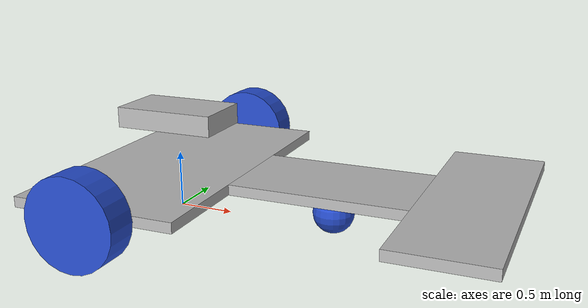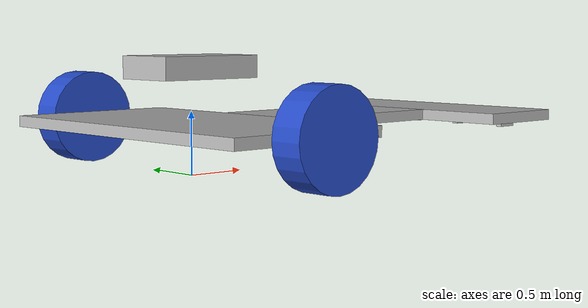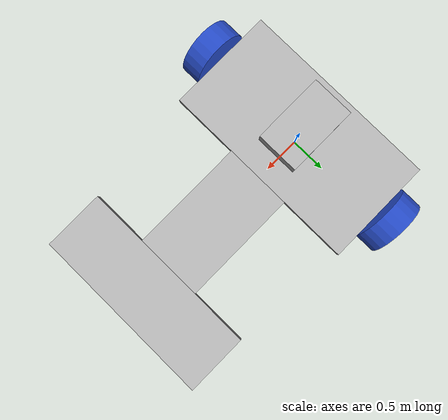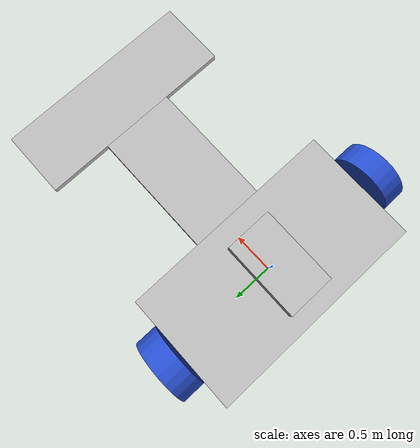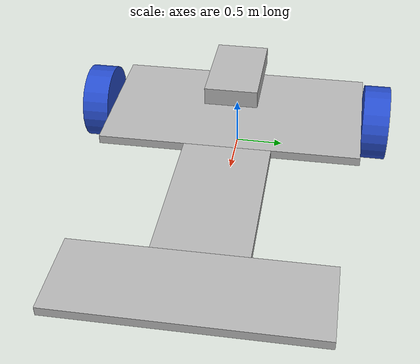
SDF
<sdf version='1.7'>
  <model name='FLF'>
    <link name='base_footprint'>
      <inertial>
        <pose>1.47813 0 0.379649 0 -0 0</pose>
        <mass>6.55</mass>
        <inertia>
          <ixx>0.272886</ixx>
          <ixy>-1.63324e-17</ixy>
          <ixz>0.0424508</ixz>
          <iyy>7.86908</iyy>
          <iyz>7.65344e-19</iyz>
          <izz>8.10009</izz>
        </inertia>
      </inertial>
      <collision name='base_footprint_fixed_joint_lump__base_link_collision'>
        <pose>0 0 0.387 0 -0 0</pose>
        <geometry>
          <box>
            <size>1.44 2.7 0.09</size>
          </box>
        </geometry>
      </collision>
      <collision name='base_footprint_fixed_joint_lump__ir_link_collision_1'>
        <pose>2.655 0 0.387 0 -0 0</pose>
        <geometry>
          <box>
            <size>0.81 2.43 0.09</size>
          </box>
        </geometry>
      </collision>
      <collision name='base_footprint_fixed_joint_lump__ir_sensor_1_collision_2'>
        <pose>2.65507 0 0.225 0 1.5708 0</pose>
        <geometry>
          <box>
            <size>0.18 0.054 0.054</size>
          </box>
        </geometry>
        <surface>
          <contact>
            <ode/>
          </contact>
          <friction>
            <ode/>
          </friction>
        </surface>
      </collision>
      <collision name='base_footprint_fixed_joint_lump__ir_sensor_2_collision_3'>
        <pose>2.655 0.486 0.315 0 1.5708 0</pose>
        <geometry>
          <box>
            <size>0.18 0.054 0.054</size>
          </box>
        </geometry>
        <surface>
          <contact>
            <ode/>
          </contact>
          <friction>
            <ode/>
          </friction>
        </surface>
      </collision>
      <collision name='base_footprint_fixed_joint_lump__ir_sensor_3_collision_4'>
        <pose>2.655 0.972 0.315 0 1.5708 0</pose>
        <geometry>
          <box>
            <size>0.18 0.054 0.054</size>
          </box>
        </geometry>
        <surface>
          <contact>
            <ode/>
          </contact>
          <friction>
            <ode/>
          </friction>
        </surface>
      </collision>
      <collision name='base_footprint_fixed_joint_lump__ir_sensor_4_collision_5'>
        <pose>2.655 -0.486 0.315 0 1.5708 0</pose>
        <geometry>
          <box>
            <size>0.18 0.054 0.054</size>
          </box>
        </geometry>
        <surface>
          <contact>
            <ode/>
          </contact>
          <friction>
            <ode/>
          </friction>
        </surface>
      </collision>
      <collision name='base_footprint_fixed_joint_lump__ir_sensor_5_collision_6'>
        <pose>2.655 -0.972 0.315 0 1.5708 0</pose>
        <geometry>
          <box>
            <size>0.18 0.054 0.054</size>
          </box>
        </geometry>
        <surface>
          <contact>
            <ode/>
          </contact>
          <friction>
            <ode/>
          </friction>
        </surface>
      </collision>
      <collision name='base_footprint_fixed_joint_lump__neck_link_collision_7'>
        <pose>1.485 0 0.387 0 -0 0</pose>
        <geometry>
          <box>
            <size>1.53 0.9 0.09</size>
          </box>
        </geometry>
      </collision>
      <collision name='base_footprint_fixed_joint_lump__caster_wheel_collision_8'>
        <pose>1.485 0 0.144 0 -0 0</pose>
        <geometry>
          <sphere>
            <radius>0.18</radius>
          </sphere>
        </geometry>
        <surface>
          <contact>
            <ode/>
          </contact>
          <friction>
            <ode>
              <mu>5e-06</mu>
              <mu2>5e-06</mu2>
            </ode>
          </friction>
        </surface>
      </collision>
      <visual name='base_footprint_fixed_joint_lump__base_link_visual'>
        <pose>0 0 0.387 0 -0 0</pose>
        <geometry>
          <box>
            <size>1.44 2.7 0.09</size>
          </box>
        </geometry>
      </visual>
      <visual name='base_footprint_fixed_joint_lump__ir_link_visual_1'>
        <pose>2.655 0 0.387 0 -0 0</pose>
        <geometry>
          <box>
            <size>0.81 2.43 0.09</size>
          </box>
        </geometry>
      </visual>
      <visual name='base_footprint_fixed_joint_lump__ir_sensor_1_visual_2'>
        <pose>2.745 0 0.315072 0 1.5708 0</pose>
        <geometry>
          <box>
            <size>0.054 0.054 0.18</size>
          </box>
        </geometry>
      </visual>
      <visual name='base_footprint_fixed_joint_lump__ir_sensor_2_visual_3'>
        <pose>2.745 0.486 0.315072 0 1.5708 0</pose>
        <geometry>
          <box>
            <size>0.054 0.054 0.18</size>
          </box>
        </geometry>
      </visual>
      <visual name='base_footprint_fixed_joint_lump__ir_sensor_3_visual_4'>
        <pose>2.745 0.972 0.315072 0 1.5708 0</pose>
        <geometry>
          <box>
            <size>0.054 0.054 0.18</size>
          </box>
        </geometry>
      </visual>
      <visual name='base_footprint_fixed_joint_lump__ir_sensor_4_visual_5'>
        <pose>2.745 -0.486 0.315072 0 1.5708 0</pose>
        <geometry>
          <box>
            <size>0.054 0.054 0.18</size>
          </box>
        </geometry>
      </visual>
      <visual name='base_footprint_fixed_joint_lump__ir_sensor_5_visual_6'>
        <pose>2.745 -0.972 0.315072 0 1.5708 0</pose>
        <geometry>
          <box>
            <size>0.054 0.054 0.18</size>
          </box>
        </geometry>
      </visual>
      <visual name='base_footprint_fixed_joint_lump__neck_link_visual_7'>
        <pose>1.485 0 0.387 0 -0 0</pose>
        <geometry>
          <box>
            <size>1.53 0.9 0.09</size>
          </box>
        </geometry>
      </visual>
      <visual name='base_footprint_fixed_joint_lump__caster_wheel_visual_8'>
        <pose>1.485 0 0.144 0 -0 0</pose>
        <geometry>
          <sphere>
            <radius>0.18</radius>
          </sphere>
        </geometry>
        <material>
          <script>
            <name>Gazebo/Blue</name>
            <uri>file://media/materials/scripts/gazebo.material</uri>
          </script>
        </material>
      </visual>
      <visual name='base_footprint_fixed_joint_lump__test_link_visual_9'>
        <pose>0 0 0.8496 0 1.5708 0</pose>
        <geometry>
          <box>
            <size>0.18 0.54 0.9</size>
          </box>
        </geometry>
      </visual>
      <sensor name='ir_sensor_1' type='ray'>
        <update_rate>30</update_rate>
        <visualize>1</visualize>
        <ray>
          <scan>
            <horizontal>
              <samples>10</samples>
              <resolution>1</resolution>
              <min_angle>-0.1</min_angle>
              <max_angle>0.1</max_angle>
            </horizontal>
          </scan>
          <range>
            <min>0.3</min>
            <max>2</max>
            <resolution>0.01</resolution>
          </range>
        </ray>
        <plugin name='ir_sensor_1_plugin' filename='libgazebo_ros_ray_sensor.so'>
          <ros>
            <namespace>/</namespace>
            <remapping>~/out:=/ir_sensor_1</remapping>
          </ros>
          <output_type>sensor_msgs/LaserScan</output_type>
          <frame_name>ir_sensor_1</frame_name>
        </plugin>
        <pose>2.655 0 0.315 3.14159 1.57079 3.14159</pose>
      </sensor>
      <sensor name='ir_sensor_2' type='ray'>
        <update_rate>30</update_rate>
        <visualize>1</visualize>
        <ray>
          <scan>
            <horizontal>
              <samples>10</samples>
              <resolution>1</resolution>
              <min_angle>-0.1</min_angle>
              <max_angle>0.1</max_angle>
            </horizontal>
          </scan>
          <range>
            <min>0.3</min>
            <max>2</max>
            <resolution>0.01</resolution>
          </range>
        </ray>
        <plugin name='ir_sensor_2_plugin' filename='libgazebo_ros_ray_sensor.so'>
          <ros>
            <namespace>/</namespace>
            <remapping>~/out:=/ir_sensor_2</remapping>
          </ros>
          <output_type>sensor_msgs/LaserScan</output_type>
          <frame_name>ir_sensor_2</frame_name>
        </plugin>
        <pose>2.655 0.486 0.315 3.14159 1.57079 3.14159</pose>
      </sensor>
      <sensor name='ir_sensor_3' type='ray'>
        <update_rate>30</update_rate>
        <visualize>1</visualize>
        <ray>
          <scan>
            <horizontal>
              <samples>10</samples>
              <resolution>1</resolution>
              <min_angle>-0.1</min_angle>
              <max_angle>0.1</max_angle>
            </horizontal>
          </scan>
          <range>
            <min>0.3</min>
            <max>2</max>
            <resolution>0.01</resolution>
          </range>
        </ray>
        <plugin name='ir_sensor_3_plugin' filename='libgazebo_ros_ray_sensor.so'>
          <ros>
            <namespace>/</namespace>
            <remapping>~/out:=/ir_sensor_3</remapping>
          </ros>
          <output_type>sensor_msgs/LaserScan</output_type>
          <frame_name>ir_sensor_3</frame_name>
        </plugin>
        <pose>2.655 0.972 0.315 3.14159 1.57079 3.14159</pose>
      </sensor>
      <sensor name='ir_sensor_4' type='ray'>
        <update_rate>30</update_rate>
        <visualize>1</visualize>
        <ray>
          <scan>
            <horizontal>
              <samples>10</samples>
              <resolution>1</resolution>
              <min_angle>-0.1</min_angle>
              <max_angle>0.1</max_angle>
            </horizontal>
          </scan>
          <range>
            <min>0.3</min>
            <max>2</max>
            <resolution>0.01</resolution>
          </range>
        </ray>
        <plugin name='ir_sensor_4_plugin' filename='libgazebo_ros_ray_sensor.so'>
          <ros>
            <namespace>/</namespace>
            <remapping>~/out:=/ir_sensor_4</remapping>
          </ros>
          <output_type>sensor_msgs/LaserScan</output_type>
          <frame_name>ir_sensor_4</frame_name>
        </plugin>
        <pose>2.655 -0.486 0.315 3.14159 1.57079 3.14159</pose>
      </sensor>
      <sensor name='ir_sensor_5' type='ray'>
        <update_rate>30</update_rate>
        <visualize>1</visualize>
        <ray>
          <scan>
            <horizontal>
              <samples>10</samples>
              <resolution>1</resolution>
              <min_angle>-0.1</min_angle>
              <max_angle>0.1</max_angle>
            </horizontal>
          </scan>
          <range>
            <min>0.3</min>
            <max>2</max>
            <resolution>0.01</resolution>
          </range>
        </ray>
        <plugin name='ir_sensor_5_plugin' filename='libgazebo_ros_ray_sensor.so'>
          <ros>
            <namespace>/</namespace>
            <remapping>~/out:=/ir_sensor_5</remapping>
          </ros>
          <output_type>sensor_msgs/LaserScan</output_type>
          <frame_name>ir_sensor_5</frame_name>
        </plugin>
        <pose>2.655 -0.972 0.315 3.14159 1.57079 3.14159</pose>
      </sensor>
      <sensor name='test_sensor' type='ray'>
        <update_rate>30</update_rate>
        <visualize>1</visualize>
        <ray>
          <scan>
            <horizontal>
              <samples>10</samples>
              <resolution>1</resolution>
              <min_angle>-0.1</min_angle>
              <max_angle>0.1</max_angle>
            </horizontal>
          </scan>
          <range>
            <min>0.01</min>
            <max>1</max>
            <resolution>0.01</resolution>
          </range>
        </ray>
        <plugin name='sensor_plugin' filename='libgazebo_ros_ray_sensor.so'>
          <ros>
            <namespace>/</namespace>
            <remapping>~/out:=/test_sensor</remapping>
          </ros>
          <output_type>sensor_msgs/LaserScan</output_type>
          <frame_name>sensor_link</frame_name>
        </plugin>
        <pose>0 0 0.8496 3.14159 1.57079 3.14159</pose>
      </sensor>
    </link>
    <joint name='base_left_wheel_joint' type='revolute'>
      <pose relative_to='base_footprint'>0 1.485 0.387 -1.5708 0 0</pose>
      <parent>base_footprint</parent>
      <child>left_wheel</child>
      <axis>
        <xyz>0 0 1</xyz>
        <limit>
          <lower>-1e+16</lower>
          <upper>1e+16</upper>
        </limit>
        <dynamics>
          <damping>0.5</damping>
          <friction>0.5</friction>
          <spring_reference>0</spring_reference>
          <spring_stiffness>0</spring_stiffness>
        </dynamics>
      </axis>
    </joint>
    <link name='left_wheel'>
      <pose relative_to='base_left_wheel_joint'>0 0 0 0 -0 0</pose>
      <inertial>
        <pose>0 0 0 0 -0 0</pose>
        <mass>0.1</mass>
        <inertia>
          <ixx>1e-05</ixx>
          <ixy>0</ixy>
          <ixz>0</ixz>
          <iyy>1e-05</iyy>
          <iyz>0</iyz>
          <izz>2e-05</izz>
        </inertia>
      </inertial>
      <collision name='left_wheel_collision'>
        <pose>0 0 0 0 -0 0</pose>
        <geometry>
          <cylinder>
            <length>0.27</length>
            <radius>0.387</radius>
          </cylinder>
        </geometry>
        <surface>
          <contact>
            <ode>
              <kp>1000</kp>
              <kd>100</kd>
            </ode>
          </contact>
          <friction>
            <ode>
              <mu>1</mu>
              <mu2>1</mu2>
              <fdir1>1 0 0</fdir1>
            </ode>
          </friction>
        </surface>
      </collision>
      <visual name='left_wheel_visual'>
        <pose>0 0 0 0 -0 0</pose>
        <geometry>
          <cylinder>
            <length>0.27</length>
            <radius>0.387</radius>
          </cylinder>
        </geometry>
        <material>
          <script>
            <name>Gazebo/Blue</name>
            <uri>file://media/materials/scripts/gazebo.material</uri>
          </script>
        </material>
      </visual>
    </link>
    <joint name='base_right_wheel_joint' type='revolute'>
      <pose relative_to='base_footprint'>0 -1.485 0.387 -1.5708 0 0</pose>
      <parent>base_footprint</parent>
      <child>right_wheel</child>
      <axis>
        <xyz>0 0 1</xyz>
        <limit>
          <lower>-1e+16</lower>
          <upper>1e+16</upper>
        </limit>
        <dynamics>
          <damping>0.5</damping>
          <friction>0.5</friction>
          <spring_reference>0</spring_reference>
          <spring_stiffness>0</spring_stiffness>
        </dynamics>
      </axis>
    </joint>
    <link name='right_wheel'>
      <pose relative_to='base_right_wheel_joint'>0 0 0 0 -0 0</pose>
      <inertial>
        <pose>0 0 0 0 -0 0</pose>
        <mass>0.1</mass>
        <inertia>
          <ixx>1e-05</ixx>
          <ixy>0</ixy>
          <ixz>0</ixz>
          <iyy>1e-05</iyy>
          <iyz>0</iyz>
          <izz>2e-05</izz>
        </inertia>
      </inertial>
      <collision name='right_wheel_collision'>
        <pose>0 0 0 0 -0 0</pose>
        <geometry>
          <cylinder>
            <length>0.27</length>
            <radius>0.387</radius>
          </cylinder>
        </geometry>
        <surface>
          <contact>
            <ode>
              <kp>1000</kp>
              <kd>100</kd>
            </ode>
          </contact>
          <friction>
            <ode>
              <mu>1</mu>
              <mu2>1</mu2>
              <fdir1>1 0 0</fdir1>
            </ode>
          </friction>
        </surface>
      </collision>
      <visual name='right_wheel_visual'>
        <pose>0 0 0 0 -0 0</pose>
        <geometry>
          <cylinder>
            <length>0.27</length>
            <radius>0.387</radius>
          </cylinder>
        </geometry>
        <material>
          <script>
            <name>Gazebo/Blue</name>
            <uri>file://media/materials/scripts/gazebo.material</uri>
          </script>
        </material>
      </visual>
    </link>
    <static>0</static>
    <plugin name='differential_drive_controller' filename='libgazebo_ros_diff_drive.so'>
      <update_rate>30</update_rate>
      <left_joint>base_left_wheel_joint</left_joint>
      <right_joint>base_right_wheel_joint</right_joint>
      <wheel_separation>2.9699999999999998</wheel_separation>
      <wheel_diameter>0.7739999999999999</wheel_diameter>
      <max_wheel_acceleration>1.0</max_wheel_acceleration>
      <max_wheel_torque>20</max_wheel_torque>
      <command_topic>cmd_vel</command_topic>
      <publish_odom>1</publish_odom>
      <publish_odom_tf>1</publish_odom_tf>
      <odometry_topic>odom</odometry_topic>
      <odometry_frame>odom</odometry_frame>
      <robot_base_frame>base_link</robot_base_frame>
    </plugin>
  </model>
</sdf>
